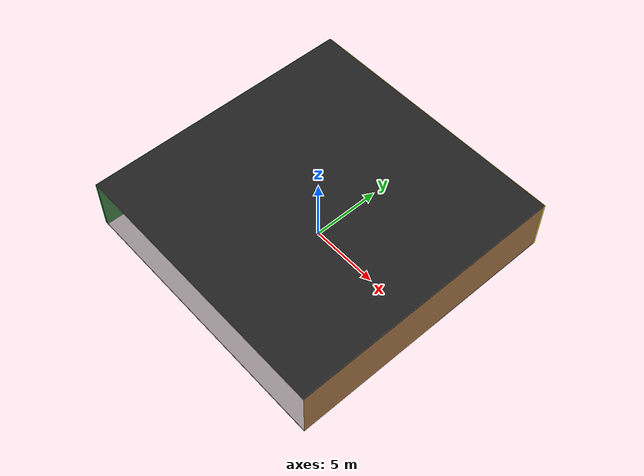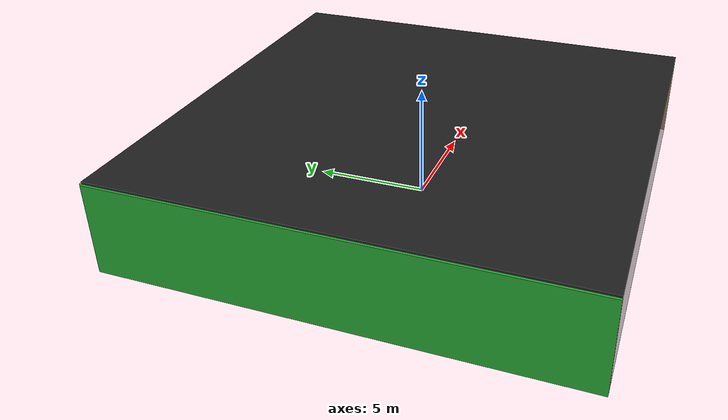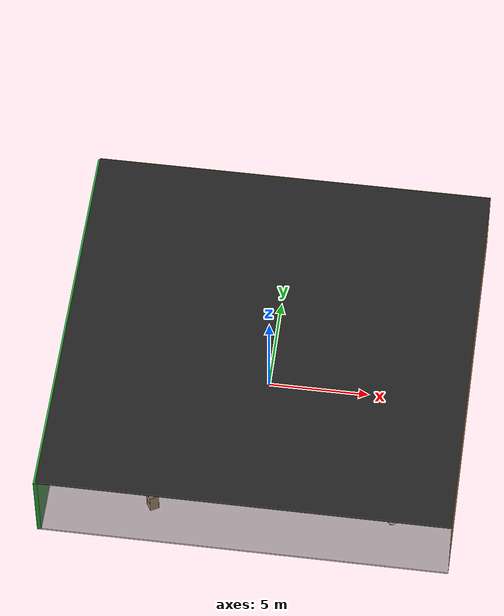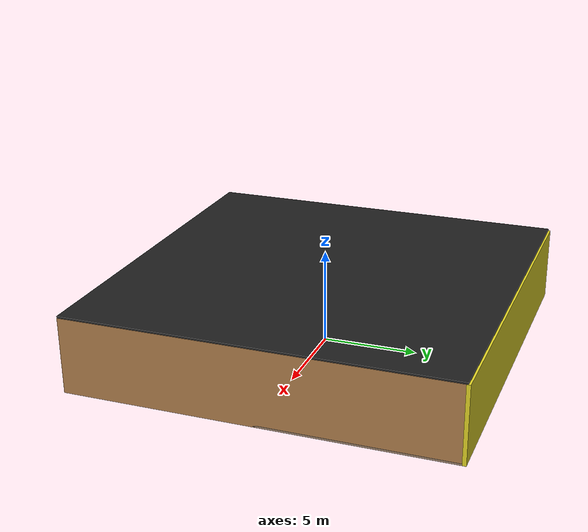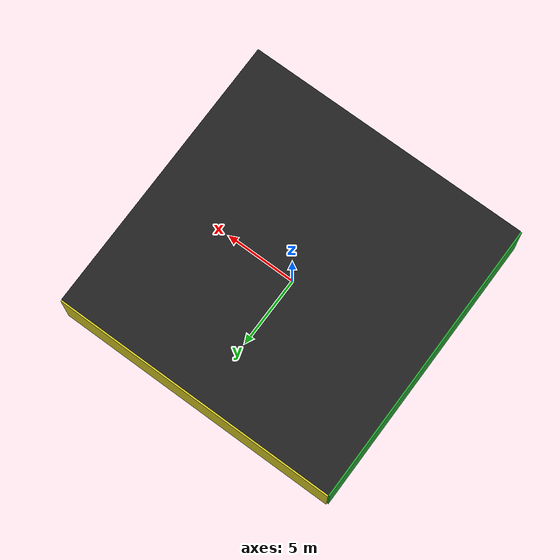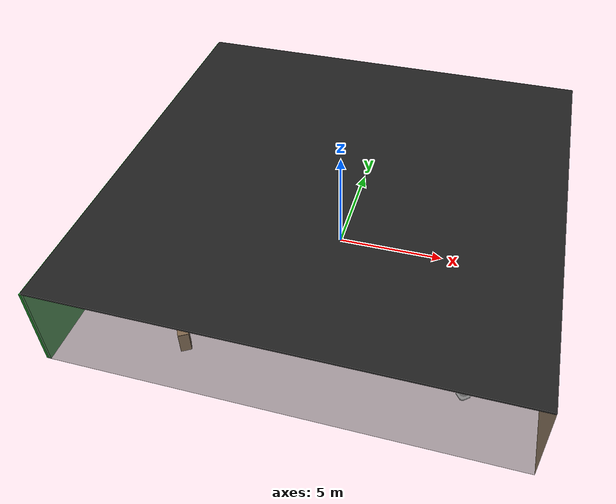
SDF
<sdf version="1.4">
 <world name="default">
  <physics type="ode">
   <max_step_size>0.001</max_step_size>
   <real_time_factor>1</real_time_factor>
   <real_time_update_rate>1000</real_time_update_rate>
   <gravity>0 0 -9.8</gravity>
  </physics>
  <scene><ambient>0.4 0.4 0.4 1</ambient><background>0.7 0.7 0.7 1</background><shadows>1</shadows></scene>
  <model name="Surrounding">
   <static>1</static>
   <link name="Ceiling">
    <collision name="Ceiling_Collision"><geometry><box><size>20 20 0.1</size></box></geometry></collision>
    <visual name="Ceiling_Visual">
     <geometry><box><size>20 20 0.1</size></box></geometry>
     <material>
      <script><uri>file://media/materials/scripts/gazebo.material</uri><name>Gazebo/FlatBlack</name></script>
     </material>
    </visual>
    <pose>0 0 4.05 0 0 0</pose>
   </link>
   <link name="Wall_South">
    <collision name="Wall_South_Collision">
     <geometry><box><size>20 0 4</size></box></geometry>
     <pose>0 0 2 0 -0 0</pose>
    </collision>
    <visual name="Wall_South_Visual">
     <pose>0 0 2 0 -0 0</pose>
     <geometry><box><size>20 0 4</size></box></geometry>
     <material>
      <script><uri>file://media/materials/scripts/gazebo.material</uri><name>Gazebo/GreyTransparent</name></script>
     </material>
    </visual>
    <velocity_decay><linear>0</linear><angular>0</angular></velocity_decay>
    <pose>0 -10 0 0 -0 0</pose>
   </link>
   <link name="Wall_East">
    <collision name="Wall_21_Collision">
     <geometry><box><size>20 0 4</size></box></geometry>
     <pose>0 0 2 0 -0 0</pose>
    </collision>
    <visual name="Wall_21_Visual">
     <pose>0 0 2 0 -0 0</pose>
     <geometry><box><size>20 0 4</size></box></geometry>
     <material>
      <script><uri>file://media/materials/scripts/gazebo.material</uri><name>Gazebo/WoodPallet</name></script>
     </material>
    </visual>
    <velocity_decay><linear>0</linear><angular>0</angular></velocity_decay>
    <pose>10 0 0 0 -0 1.5708</pose>
   </link>
   <link name="Wall_North">
    <collision name="Wall_22_Collision">
     <geometry><box><size>20 0.2 4</size></box></geometry>
     <pose>0 0 2 0 -0 0</pose>
    </collision>
    <visual name="Wall_22_Visual">
     <pose>0 0 2 0 -0 0</pose>
     <geometry><box><size>20 0.2 4</size></box></geometry>
     <material>
      <script><uri>file://media/materials/scripts/gazebo.material</uri><name>Gazebo/YellowGlow</name></script>
     </material>
    </visual>
    <velocity_decay><linear>0</linear><angular>0</angular></velocity_decay>
    <pose>0 10 0 0 -0 0</pose>
   </link>
   <link name="Wall_West">
    <collision name="Wall_23_Collision">
     <geometry><box><size>20 0.2 4</size></box></geometry>
     <pose>0 0 2 0 -0 0</pose>
    </collision>
    <visual name="Wall_23_Visual">
     <pose>0 0 2 0 -0 0</pose>
     <geometry><box><size>20 0.2 4</size></box></geometry>
     <material>
      <script><uri>file://media/materials/scripts/gazebo.material</uri><name>Gazebo/GreenGlow</name></script>
     </material>
    </visual>
    <velocity_decay><linear>0</linear><angular>0</angular></velocity_decay>
    <pose>-10 0 0 0 0 -1.5708</pose>
   </link>
   <link name="Ground_link">
    <collision name="collision">
     <pose>0 0 .05 0 -0 0</pose>
     <geometry><box><size>20 20 0.1</size></box></geometry>
    </collision>
    <visual name="visual">
     <pose>0 0 .05 0 -0 0</pose>
     <geometry><box><size>20 20 0.1</size></box></geometry>
     <material>
      <script><uri>file://media/materials/scripts/gazebo.material</uri><name>Gazebo/GreyTransparent</name></script>
     </material>
    </visual>
   </link>
   <static>1</static>
  </model>
  <spherical_coordinates>
   <surface_model>EARTH_WGS84</surface_model>
   <latitude_deg>0</latitude_deg>
   <longitude_deg>0</longitude_deg>
   <elevation>0</elevation>
   <heading_deg>0</heading_deg>
  </spherical_coordinates>
  <light name="lightball_0" type="diffuse">
   <diffuse>0.8 0.8 0.8 1</diffuse>
   <specular>0.2 0.2 0.2 1</specular>
   <attenuation>
    <range>100</range>
    <constant>0.7</constant>
    <linear>0.01</linear>
    <quadratic>0.001</quadratic>
   </attenuation>
   <direction>-0.5 0.1 -0.9</direction>
   <pose>0.623140881684 8.18547759944 1.94178286118 0 0 0</pose>
  </light>
  <light name="lightball_1" type="diffuse">
   <diffuse>0.8 0.8 0.8 1</diffuse>
   <specular>0.2 0.2 0.2 1</specular>
   <attenuation>
    <range>100</range>
    <constant>0.7</constant>
    <linear>0.01</linear>
    <quadratic>0.001</quadratic>
   </attenuation>
   <direction>-0.5 0.1 -0.9</direction>
   <pose>-1.32888856034 -3.70037468597 1.59050581359 0 0 0</pose>
  </light>
  <light name="lightball_2" type="diffuse">
   <diffuse>0.8 0.8 0.8 1</diffuse>
   <specular>0.2 0.2 0.2 1</specular>
   <attenuation>
    <range>100</range>
    <constant>0.7</constant>
    <linear>0.01</linear>
    <quadratic>0.001</quadratic>
   </attenuation>
   <direction>-0.5 0.1 -0.9</direction>
   <pose>-4.47628926451 -0.032262919307 2.78889587396 0 0 0</pose>
  </light>
  <light name="lightball_3" type="diffuse">
   <diffuse>0.8 0.8 0.8 1</diffuse>
   <specular>0.2 0.2 0.2 1</specular>
   <attenuation>
    <range>100</range>
    <constant>0.7</constant>
    <linear>0.01</linear>
    <quadratic>0.001</quadratic>
   </attenuation>
   <direction>-0.5 0.1 -0.9</direction>
   <pose>-0.725472537158 -4.01961393314 3.11483641616 0 0 0</pose>
  </light>
  <light name="lightball_4" type="diffuse">
   <diffuse>0.8 0.8 0.8 1</diffuse>
   <specular>0.2 0.2 0.2 1</specular>
   <attenuation>
    <range>100</range>
    <constant>0.7</constant>
    <linear>0.01</linear>
    <quadratic>0.001</quadratic>
   </attenuation>
   <direction>-0.5 0.1 -0.9</direction>
   <pose>-0.498072859938 9.01923019962 3.17466497936 0 0 0</pose>
  </light>
  <include>
   <uri>model://robocup_3Dsim_goal</uri>
   <pose>-7.38686896132 0.987809105275 0 0 0 2.70388244868</pose>
  </include>
  <include><uri>model://cabinet</uri><pose>-4.71625861744 -7.9301414689 0 0 0 0.517527735032</pose></include>
  <include><uri>model://cabinet</uri><pose>-5.18035017611 -3.80236322265 0 0 0 1.57720727657</pose></include>
  <include>
   <uri>model://robocup_3Dsim_goal</uri>
   <pose>-5.16550834196 -1.76658310685 0 0 0 0.642360438792</pose>
  </include>
  <include>
   <uri>model://construction_cone</uri>
   <pose>-1.26990090898 6.88342240321 0 0 0 1.61542361069</pose>
  </include>
  <include><uri>model://table</uri><pose>4.31180372739 1.66339659733 0 0 0 0.914460168184</pose></include>
  <include>
   <uri>model://construction_cone</uri>
   <pose>7.0146170724 -7.2700081046 0 0 0 2.25484008344</pose>
  </include>
  <include><uri>model://cabinet</uri><pose>7.51458088631 -1.7958496529 0 0 0 3.04422101278</pose></include>
 </world>
</sdf>

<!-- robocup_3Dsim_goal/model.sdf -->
<sdf version="1.5">
  <model name="robocup_3d_goal">
    <static>true</static>
    <link name="left_post">
      <pose>0 1.05 0.45 0 0 0</pose>
      <collision name="collision">
        <geometry>
          <cylinder>
            <radius>0.05</radius>
            <length>0.9</length>
          </cylinder>
        </geometry>
      </collision>
      <visual name="visual">
        <geometry>
          <cylinder>
            <radius>0.05</radius>
            <length>0.9</length>
          </cylinder>
        </geometry>
        <material>
          <script>
            <uri>file://media/materials/scripts/gazebo.material</uri>
            <name>Gazebo/ZincYellow</name>
          </script>
        </material>
      </visual>
    </link>
    <link name="left_support_horiz_lower">
      <pose>0.30 1.05 0.01 0 0 0</pose>
      <collision name="collision">
        <geometry>
          <box>
            <size>0.50 0.02 0.02</size>
          </box>
        </geometry>
      </collision>
      <visual name="visual">
        <geometry>
          <box>
            <size>0.50 0.02 0.02</size>
          </box>
        </geometry>
        <material>
          <script>
            <uri>file://media/materials/scripts/gazebo.material</uri>
            <name>Gazebo/White</name>
          </script>
        </material>
      </visual>
    </link>
    <link name="left_support_horiz_upper">
      <pose>0.30 1.05 0.79 0 0 0</pose>
      <collision name="collision">
        <geometry>
          <box>
            <size>0.50 0.02 0.02</size>
          </box>
        </geometry>
      </collision>
      <visual name="visual">
        <geometry>
          <box>
            <size>0.50 0.02 0.02</size>
          </box>
        </geometry>
        <material>
          <script>
            <uri>file://media/materials/scripts/gazebo.material</uri>
            <name>Gazebo/White</name>
          </script>
        </material>
      </visual>
    </link>
    <link name="left_support_vertical">
      <pose>0.56 1.05 0.4 0 1.5708 0</pose>
      <collision name="collision">
        <geometry>
          <box>
            <size>0.80 0.02 0.02</size>
          </box>
        </geometry>
      </collision>
      <visual name="visual">
        <geometry>
          <box>
            <size>0.80 0.02 0.02</size>
          </box>
        </geometry>
        <material>
          <script>
            <uri>file://media/materials/scripts/gazebo.material</uri>
            <name>Gazebo/White</name>
          </script>
        </material>
      </visual>
    </link>
    <link name="right_support_horiz_lower">
      <pose>0.30 -1.05 0.01 0 0 0</pose>
      <collision name="collision">
        <geometry>
          <box>
            <size>0.50 0.02 0.02</size>
          </box>
        </geometry>
      </collision>
      <visual name="visual">
        <geometry>
          <box>
            <size>0.50 0.02 0.02</size>
          </box>
        </geometry>
        <material>
          <script>
            <uri>file://media/materials/scripts/gazebo.material</uri>
            <name>Gazebo/White</name>
          </script>
        </material>
      </visual>
    </link>
    <link name="right_support_horiz_upper">
      <pose>0.30 -1.05 0.79 0 0 0</pose>
      <collision name="collision">
        <geometry>
          <box>
            <size>0.50 0.02 0.02</size>
          </box>
        </geometry>
      </collision>
      <visual name="visual">
        <geometry>
          <box>
            <size>0.50 0.02 0.02</size>
          </box>
        </geometry>
        <material>
          <script>
            <uri>file://media/materials/scripts/gazebo.material</uri>
            <name>Gazebo/White</name>
          </script>
        </material>
      </visual>
    </link>
    <link name="right_support_vertical">
      <pose>0.56 -1.05 0.4 0 1.5708 0</pose>
      <collision name="collision">
        <geometry>
          <box>
            <size>0.80 0.02 0.02</size>
          </box>
        </geometry>
      </collision>
      <visual name="visual">
        <geometry>
          <box>
            <size>0.80 0.02 0.02</size>
          </box>
        </geometry>
        <material>
          <script>
            <uri>file://media/materials/scripts/gazebo.material</uri>
            <name>Gazebo/White</name>
          </script>
        </material>
      </visual>
    </link>
    <link name="center_support_horiz_lower">
      <pose>0.56 0 0.01 0 1.5708 0</pose>
      <collision name="collision">
        <geometry>
          <box>
            <size>0.02 2.08 0.02</size>
          </box>
        </geometry>
      </collision>
      <visual name="visual">
        <geometry>
          <box>
            <size>0.02 2.08 0.02</size>
          </box>
        </geometry>
        <material>
          <script>
            <uri>file://media/materials/scripts/gazebo.material</uri>
            <name>Gazebo/White</name>
          </script>
        </material>
      </visual>
    </link>
    <link name="center_support_horiz_upper">
      <pose>0.56 0 0.79 0 1.5708 0</pose>
      <collision name="collision">
        <geometry>
          <box>
            <size>0.02 2.08 0.02</size>
          </box>
        </geometry>
      </collision>
      <visual name="visual">
        <geometry>
          <box>
            <size>0.02 2.08 0.02</size>
          </box>
        </geometry>
        <material>
          <script>
            <uri>file://media/materials/scripts/gazebo.material</uri>
            <name>Gazebo/White</name>
          </script>
        </material>
      </visual>
    </link>
    <link name="right_post">
      <pose>0 -1.05 0.45 0 0 0</pose>
      <collision name="collision">
        <geometry>
          <cylinder>
            <radius>0.05</radius>
            <length>0.9</length>
          </cylinder>
        </geometry>
      </collision>
      <visual name="visual">
        <geometry>
          <cylinder>
            <radius>0.05</radius>
            <length>0.9</length>
          </cylinder>
        </geometry>
        <material>
          <script>
            <uri>file://media/materials/scripts/gazebo.material</uri>
            <name>Gazebo/ZincYellow</name>
          </script>
        </material>
      </visual>
    </link>
    <link name="crossbar">
      <pose>0 0 0.85 1.57 1.57 0</pose>
      <collision name="collision">
        <geometry>
          <cylinder>
            <radius>0.05</radius>
            <length>2.0</length>
          </cylinder>
        </geometry>
      </collision>
      <visual name="visual">
        <geometry>
          <cylinder>
            <radius>0.05</radius>
            <length>2.0</length>
          </cylinder>
        </geometry>
        <material>
          <script>
            <uri>file://media/materials/scripts/gazebo.material</uri>
            <name>Gazebo/ZincYellow</name>
          </script>
        </material>
      </visual>
    </link>
    <link name="center_net">
      <pose>0.56 0 0.40 0 0 0</pose>
      <collision name="collision">
        <geometry>
          <box>
            <size>0.01 2.1 0.80</size>
          </box>
        </geometry>
      </collision>
      <visual name="visual">
        <geometry>
          <box>
            <size>0.01 2.1 0.80</size>
          </box>
        </geometry>
        <material>
          <script>
            <uri>model://../model_source/models/robocup09_spl_field/materials/scripts/</uri>
            <uri>model://../model_source/models/robocup09_spl_field/materials/textures/</uri>
            <name>RoboCup/Net</name>
          </script>
        </material>
      </visual>
    </link>
    <link name="left_net">
      <pose>0.30 1.05 0.40 0 0 0</pose>
      <collision name="collision">
        <geometry>
          <box>
            <size>0.50 0.01 0.76</size>
          </box>
        </geometry>
      </collision>
      <visual name="visual">
        <geometry>
          <box>
            <size>0.50 0.01 0.76</size>
          </box>
        </geometry>
        <material>
          <script>
            <uri>model://../model_source/models/robocup09_spl_field/materials/scripts/</uri>
            <uri>model://../model_source/models/robocup09_spl_field/materials/textures/</uri>
            <name>RoboCup/Net</name>
          </script>
        </material>
      </visual>
    </link>
    <link name="right_net">
      <pose>0.30 -1.05 0.40 0 0 0</pose>
      <collision name="collision">
        <geometry>
          <box>
            <size>0.50 0.01 0.76</size>
          </box>
        </geometry>
      </collision>
      <visual name="visual">
        <geometry>
          <box>
            <size>0.50 0.01 0.76</size>
          </box>
        </geometry>
        <material>
          <script>
            <uri>model://../model_source/models/robocup09_spl_field/materials/scripts/</uri>
            <uri>model://../model_source/models/robocup09_spl_field/materials/textures/</uri>
            <name>RoboCup/Net</name>
          </script>
        </material>
      </visual>
    </link>
  </model>
</sdf>

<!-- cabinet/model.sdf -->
<sdf version="1.5">
  <model name="cabinet">
    <static>true</static>
    <link name="cabinet_bottom_plate">
      <inertial>
        <pose>0 0 -1 0 0 0</pose>
        <inertia>
          <ixx>2.050000</ixx>
          <ixy>0</ixy>
          <ixz>0</ixz>
          <iyy>2.050000</iyy>
          <iyz>0</iyz>
          <izz>2.050000</izz>
        </inertia>
        <mass>25.000000</mass>
      </inertial>
      <collision name="cabinet_bottom_plate_geom">
        <pose>0 0 0.010000 0 0 0</pose>
        <geometry>
          <box>
            <size>0.450000 0.450000 0.020000</size>
          </box>
        </geometry>
      </collision>
      <visual name="cabinet_bottom_plate_geom_visual">
        <pose>0 0 0.010000 0 0 0</pose>
        <geometry>
          <box>
            <size>0.450000 0.450000 0.020000</size>
          </box>
        </geometry>
        <material>
          <script>
            <uri>model://media/materials/scripts/gazebo.material</uri>
            <name>Gazebo/Wood</name>
          </script>
        </material>
      </visual>
      <collision name="cabinet_bottom_plate_geom_cabinet_back_plate">
        <pose>0.235000 0 0.510000 0 0 0</pose>
        <geometry>
          <box>
            <size>0.020000 0.450000 1.020000</size>
          </box>
        </geometry>
      </collision>
      <visual name="cabinet_bottom_plate_geom_cabinet_back_plate_visual">
        <pose>0.235000 0 0.510000 0 0 0</pose>
        <geometry>
          <box>
            <size>0.020000 0.450000 1.020000</size>
          </box>
        </geometry>
        <material>
          <script>
            <uri>model://media/materials/scripts/gazebo.material</uri>
            <name>Gazebo/Wood</name>
          </script>
        </material>
      </visual>
      <collision name="cabinet_bottom_plate_geom_cabinet_left_plate">
        <pose>0 0.235000 0.510000 0 0 0</pose>
        <geometry>
          <box>
            <size>0.450000 0.020000 1.020000</size>
          </box>
        </geometry>
      </collision>
      <visual name="cabinet_bottom_plate_geom_cabinet_left_plate_visual">
        <pose>0 0.235000 0.510000 0 0 0</pose>
        <geometry>
          <box>
            <size>0.450000 0.020000 1.020000</size>
          </box>
        </geometry>
        <material>
          <script>
            <uri>model://media/materials/scripts/gazebo.material</uri>
            <name>Gazebo/Wood</name>
          </script>
        </material>
      </visual>
      <collision name="cabinet_bottom_plate_geom_cabinet_middle_plate">
        <pose>0 0 0.510000 0 0 0</pose>
        <geometry>
          <box>
            <size>0.450000 0.450000 0.020000</size>
          </box>
        </geometry>
      </collision>
      <visual name="cabinet_bottom_plate_geom_cabinet_middle_plate_visual">
        <pose>0 0 0.510000 0 0 0</pose>
        <geometry>
          <box>
            <size>0.450000 0.450000 0.020000</size>
          </box>
        </geometry>
        <material>
          <script>
            <uri>model://media/materials/scripts/gazebo.material</uri>
            <name>Gazebo/Wood</name>
          </script>
        </material>
      </visual>
      <collision name="cabinet_bottom_plate_geom_cabinet_right_plate">
        <pose>0 -0.235000 0.510000 0 0 0</pose>
        <geometry>
          <box>
            <size>0.450000 0.020000 1.020000</size>
          </box>
        </geometry>
      </collision>
      <visual name="cabinet_bottom_plate_geom_cabinet_right_plate_visual">
        <pose>0 -0.235000 0.510000 0 0 0</pose>
        <geometry>
          <box>
            <size>0.450000 0.020000 1.020000</size>
          </box>
        </geometry>
        <material>
          <script>
            <uri>model://media/materials/scripts/gazebo.material</uri>
            <name>Gazebo/Wood</name>
          </script>
        </material>
      </visual>
      <collision name="cabinet_bottom_plate_geom_cabinet_top_plate">
        <pose>0 0 1.010000 0 0 0</pose>
        <geometry>
          <box>
            <size>0.450000 0.450000 0.020000</size>
          </box>
        </geometry>
      </collision>
      <visual name="cabinet_bottom_plate_geom_cabinet_top_plate_visual">
        <pose>0 0 1.010000 0 0 0</pose>
        <geometry>
          <box>
            <size>0.450000 0.450000 0.020000</size>
          </box>
        </geometry>
        <material>
          <script>
            <uri>model://media/materials/scripts/gazebo.material</uri>
            <name>Gazebo/Wood</name>
          </script>
        </material>
      </visual>
    </link>
  </model>
</sdf>

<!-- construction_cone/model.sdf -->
<sdf version="1.5">
  <model name="Construction Cone">
    <link name="link">
      <collision name="collision">
        <geometry>
          <mesh>
            <scale>10 10 10</scale>
            <uri>file://isr-testbed/construction_cone/meshes/construction_cone.dae</uri>
          </mesh>
        </geometry>
      </collision>
      <visual name="visual">
        <geometry>
          <mesh>
            <scale>10 10 10</scale>
            <uri>file://isr-testbed/construction_cone/meshes/construction_cone.dae</uri>
          </mesh>
        </geometry>
      </visual>
    </link>
  </model>
</sdf>

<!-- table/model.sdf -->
<sdf version="1.5">
  <model name="table">
    <static>true</static>
    <link name="link">
      <collision name="surface">
        <pose>0 0 1.0 0 0 0</pose>
        <geometry>
          <box>
            <size>1.5 0.8 0.03</size>
          </box>
        </geometry>
        <surface>
          <friction>
            <ode>
              <mu>0.6</mu>
              <mu2>0.6</mu2>
            </ode>
          </friction>
        </surface>
      </collision>
      <visual name="visual1">
        <pose>0 0 1.0 0 0 0</pose>
        <geometry>
          <box>
            <size>1.5 0.8 0.03</size>
          </box>
        </geometry>
        <material>
          <script>
            <uri>model://media/materials/scripts/gazebo.material</uri>
            <name>Gazebo/Wood</name>
          </script>
        </material>
      </visual>
      <collision name="front_left_leg">
        <pose>0.68 0.38 0.5 0 0 0</pose>
        <geometry>
          <cylinder>
            <radius>0.02</radius>
            <length>1.0</length>
          </cylinder>
        </geometry>
      </collision>
      <visual name="front_left_leg">
        <pose>0.68 0.38 0.5 0 0 0</pose>
        <geometry>
          <cylinder>
            <radius>0.02</radius>
            <length>1.0</length>
          </cylinder>
        </geometry>
        <material>
          <script>
            <uri>model://media/materials/scripts/gazebo.material</uri>
            <name>Gazebo/Grey</name>
          </script>
        </material>
      </visual>
      <collision name="front_right_leg">
        <pose>0.68 -0.38 0.5 0 0 0</pose>
        <geometry>
          <cylinder>
            <radius>0.02</radius>
            <length>1.0</length>
          </cylinder>
        </geometry>
      </collision>
      <visual name="front_right_leg">
        <pose>0.68 -0.38 0.5 0 0 0</pose>
        <geometry>
          <cylinder>
            <radius>0.02</radius>
            <length>1.0</length>
          </cylinder>
        </geometry>
        <material>
          <script>
            <uri>model://media/materials/scripts/gazebo.material</uri>
            <name>Gazebo/Grey</name>
          </script>
        </material>
      </visual>
      <collision name="back_right_leg">
        <pose>-0.68 -0.38 0.5 0 0 0</pose>
        <geometry>
          <cylinder>
            <radius>0.02</radius>
            <length>1.0</length>
          </cylinder>
        </geometry>
      </collision>
      <visual name="back_right_leg">
        <pose>-0.68 -0.38 0.5 0 0 0</pose>
        <geometry>
          <cylinder>
            <radius>0.02</radius>
            <length>1.0</length>
          </cylinder>
        </geometry>
        <material>
          <script>
            <uri>model://media/materials/scripts/gazebo.material</uri>
            <name>Gazebo/Grey</name>
          </script>
        </material>
      </visual>
      <collision name="back_left_leg">
        <pose>-0.68 0.38 0.5 0 0 0</pose>
        <geometry>
          <cylinder>
            <radius>0.02</radius>
            <length>1.0</length>
          </cylinder>
        </geometry>
      </collision>
      <visual name="back_left_leg">
        <pose>-0.68 0.38 0.5 0 0 0</pose>
        <geometry>
          <cylinder>
            <radius>0.02</radius>
            <length>1.0</length>
          </cylinder>
        </geometry>
        <material>
          <script>
            <uri>model://media/materials/scripts/gazebo.material</uri>
            <name>Gazebo/Grey</name>
          </script>
        </material>
      </visual>
    </link>
  </model>
</sdf>
